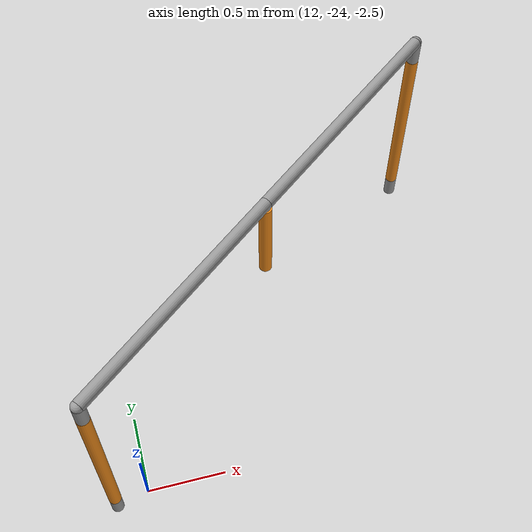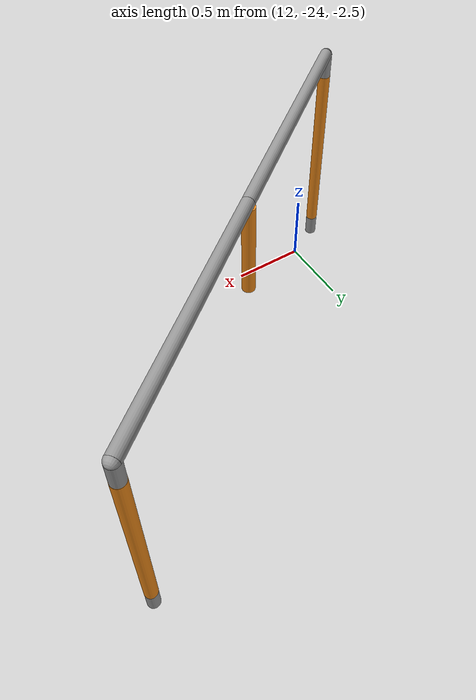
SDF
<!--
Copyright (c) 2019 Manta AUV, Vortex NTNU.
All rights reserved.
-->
<sdf version="1.5">
 <world name="empty_underwater">
  <physics name="default_physics" default="true" type="ode">
   <max_step_size>0.002</max_step_size>
   <real_time_factor>1</real_time_factor>
   <real_time_update_rate>500</real_time_update_rate>
   <ode><solver><type>quick</type><iters>50</iters><sor>0.5</sor></solver></ode>
  </physics>
  <scene>
   <ambient>0.01 0.01 0.01 1.0</ambient>
   <sky><clouds><speed>12</speed></clouds></sky>
   <shadows>1</shadows>
   <fog>
    <color>0.0039 0.26 0.415 1.0</color>
    <type>linear</type>
    <density>0.2</density>
    <start>10</start>
    <end>40</end>
   </fog>
  </scene>
  <spherical_coordinates>
   <latitude_deg>56.71897669633431</latitude_deg>
   <longitude_deg>3.515625</longitude_deg>
  </spherical_coordinates>
  <include><uri>model://sun</uri></include>
  <include><name>gate_side_a</name><pose>12.4 -23.6 -0.9 0 0 -0.9</pose><uri>model://2018/gate</uri></include>
  <light type="directional" name="sun4">
   <pose>8 -19 10 1.75 0 2.9</pose>
   <diffuse>0.8 0.8 0.8 1</diffuse>
   <specular>0.2 0.2 0.2 1</specular>
   <attenuation>
    <range>1000</range>
    <constant>0.9</constant>
    <linear>0.01</linear>
    <quadratic>0.001</quadratic>
   </attenuation>
   <direction>-0.5 0.1 -0.9</direction>
  </light>
  <plugin name="sc_interface" filename="libuuv_sc_ros_interface_plugin.so"/>
 </world>
</sdf>

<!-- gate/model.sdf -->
<sdf version='1.6'>
  <model name='gate'>
    <link name='component_rt'>
      <inertial>
        <mass>10</mass>
        <inertia>
          <ixx>0.145833</ixx>
          <ixy>0</ixy>
          <ixz>0</ixz>
          <iyy>0.145833</iyy>
          <iyz>0</iyz>
          <izz>0.125</izz>
        </inertia>
        <pose>0 0 0 0 -0 0</pose>
      </inertial>
      <pose>0 1.52 -0.000146 1.5707 -0 0</pose>
      <self_collide>0</self_collide>
      <enable_wind>0</enable_wind>
      <kinematic>0</kinematic>
      <gravity>0</gravity>
      <visual name='visual'>
        <pose>0 0 0 0 -0 0</pose>
        <geometry>
          <cylinder>
            <radius>0.0381</radius>
            <length>1.52</length>
          </cylinder>
        </geometry>
        <material>
          <lighting>1</lighting>
          <script>
            <uri>file://media/materials/scripts/gazebo.material</uri>
            <name>Gazebo/Grey</name>
          </script>
          <shader type='pixel'/>
          <emissive>0 0 0 1</emissive>
        </material>
        <transparency>0</transparency>
        <cast_shadows>1</cast_shadows>
      </visual>
      <collision name='collision'>
        <laser_retro>0</laser_retro>
        <max_contacts>10</max_contacts>
        <pose>0 0 0 0 -0 0</pose>
        <geometry>
          <cylinder>
            <radius>0.0381</radius>
            <length>1.52</length>
          </cylinder>
        </geometry>
        <surface>
          <friction>
            <ode>
              <mu>1</mu>
              <mu2>1</mu2>
              <fdir1>0 0 0</fdir1>
              <slip1>0</slip1>
              <slip2>0</slip2>
            </ode>
            <torsional>
              <coefficient>1</coefficient>
              <patch_radius>0</patch_radius>
              <surface_radius>0</surface_radius>
              <use_patch_radius>1</use_patch_radius>
              <ode>
                <slip>0</slip>
              </ode>
            </torsional>
          </friction>
          <bounce>
            <restitution_coefficient>0</restitution_coefficient>
            <threshold>1e+06</threshold>
          </bounce>
          <contact>
            <collide_without_contact>0</collide_without_contact>
            <collide_without_contact_bitmask>1</collide_without_contact_bitmask>
            <collide_bitmask>1</collide_bitmask>
            <ode>
              <soft_cfm>0</soft_cfm>
              <soft_erp>0.2</soft_erp>
              <kp>1e+13</kp>
              <kd>1</kd>
              <max_vel>0.01</max_vel>
              <min_depth>0</min_depth>
            </ode>
            <bullet>
              <split_impulse>1</split_impulse>
              <split_impulse_penetration_threshold>-0.01</split_impulse_penetration_threshold>
              <soft_cfm>0</soft_cfm>
              <soft_erp>0.2</soft_erp>
              <kp>1e+13</kp>
              <kd>1</kd>
            </bullet>
          </contact>
        </surface>
      </collision>
    </link>
    <link name='component_lb'>
      <inertial>
        <mass>10</mass>
        <inertia>
          <ixx>0.145833</ixx>
          <ixy>0</ixy>
          <ixz>0</ixz>
          <iyy>0.145833</iyy>
          <iyz>0</iyz>
          <izz>0.125</izz>
        </inertia>
        <pose>0 0 0 0 -0 0</pose>
      </inertial>
      <pose>-0 -0.760073 -0.759927 0 -0 0</pose>
      <self_collide>0</self_collide>
      <enable_wind>0</enable_wind>
      <kinematic>0</kinematic>
      <gravity>0</gravity>
      <visual name='visual'>
        <pose>0 0 0 0 -0 0</pose>
        <geometry>
          <cylinder>
            <radius>0.0381</radius>
            <length>1.52</length>
          </cylinder>
        </geometry>
        <material>
          <lighting>1</lighting>
          <script>
            <uri>file://media/materials/scripts/gazebo.material</uri>
            <name>Gazebo/Grey</name>
          </script>
          <shader type='pixel'/>
          <emissive>0 0 0 1</emissive>
        </material>
        <transparency>0</transparency>
        <cast_shadows>1</cast_shadows>
      </visual>
      <collision name='collision'>
        <laser_retro>0</laser_retro>
        <max_contacts>10</max_contacts>
        <pose>0 0 0 0 -0 0</pose>
        <geometry>
          <cylinder>
            <radius>0.0381</radius>
            <length>1.52</length>
          </cylinder>
        </geometry>
        <surface>
          <friction>
            <ode>
              <mu>1</mu>
              <mu2>1</mu2>
              <fdir1>0 0 0</fdir1>
              <slip1>0</slip1>
              <slip2>0</slip2>
            </ode>
            <torsional>
              <coefficient>1</coefficient>
              <patch_radius>0</patch_radius>
              <surface_radius>0</surface_radius>
              <use_patch_radius>1</use_patch_radius>
              <ode>
                <slip>0</slip>
              </ode>
            </torsional>
          </friction>
          <bounce>
            <restitution_coefficient>0</restitution_coefficient>
            <threshold>1e+06</threshold>
          </bounce>
          <contact>
            <collide_without_contact>0</collide_without_contact>
            <collide_without_contact_bitmask>1</collide_without_contact_bitmask>
            <collide_bitmask>1</collide_bitmask>
            <ode>
              <soft_cfm>0</soft_cfm>
              <soft_erp>0.2</soft_erp>
              <kp>1e+13</kp>
              <kd>1</kd>
              <max_vel>0.01</max_vel>
              <min_depth>0</min_depth>
            </ode>
            <bullet>
              <split_impulse>1</split_impulse>
              <split_impulse_penetration_threshold>-0.01</split_impulse_penetration_threshold>
              <soft_cfm>0</soft_cfm>
              <soft_erp>0.2</soft_erp>
              <kp>1e+13</kp>
              <kd>1</kd>
            </bullet>
          </contact>
        </surface>
      </collision>
    </link>
    <link name='component_lt'>
      <inertial>
        <mass>10</mass>
        <inertia>
          <ixx>0.145833</ixx>
          <ixy>0</ixy>
          <ixz>0</ixz>
          <iyy>0.145833</iyy>
          <iyz>0</iyz>
          <izz>0.125</izz>
        </inertia>
        <pose>0 0 0 0 -0 0</pose>
      </inertial>
      <pose>0 0 0 1.5707 -0 0</pose>
      <self_collide>0</self_collide>
      <enable_wind>0</enable_wind>
      <kinematic>0</kinematic>
      <gravity>0</gravity>
      <visual name='visual'>
        <pose>0 0 0 0 -0 0</pose>
        <geometry>
          <cylinder>
            <radius>0.0381</radius>
            <length>1.52</length>
          </cylinder>
        </geometry>
        <material>
          <lighting>1</lighting>
          <script>
            <uri>file://media/materials/scripts/gazebo.material</uri>
            <name>Gazebo/Grey</name>
          </script>
          <shader type='pixel'/>
          <emissive>0 0 0 1</emissive>
        </material>
        <transparency>0</transparency>
        <cast_shadows>1</cast_shadows>
      </visual>
      <collision name='collision'>
        <laser_retro>0</laser_retro>
        <max_contacts>10</max_contacts>
        <pose>0 0 0 0 -0 0</pose>
        <geometry>
          <cylinder>
            <radius>0.0381</radius>
            <length>1.52</length>
          </cylinder>
        </geometry>
        <surface>
          <friction>
            <ode>
              <mu>1</mu>
              <mu2>1</mu2>
              <fdir1>0 0 0</fdir1>
              <slip1>0</slip1>
              <slip2>0</slip2>
            </ode>
            <torsional>
              <coefficient>1</coefficient>
              <patch_radius>0</patch_radius>
              <surface_radius>0</surface_radius>
              <use_patch_radius>1</use_patch_radius>
              <ode>
                <slip>0</slip>
              </ode>
            </torsional>
          </friction>
          <bounce>
            <restitution_coefficient>0</restitution_coefficient>
            <threshold>1e+06</threshold>
          </bounce>
          <contact>
            <collide_without_contact>0</collide_without_contact>
            <collide_without_contact_bitmask>1</collide_without_contact_bitmask>
            <collide_bitmask>1</collide_bitmask>
            <ode>
              <soft_cfm>0</soft_cfm>
              <soft_erp>0.2</soft_erp>
              <kp>1e+13</kp>
              <kd>1</kd>
              <max_vel>0.01</max_vel>
              <min_depth>0</min_depth>
            </ode>
            <bullet>
              <split_impulse>1</split_impulse>
              <split_impulse_penetration_threshold>-0.01</split_impulse_penetration_threshold>
              <soft_cfm>0</soft_cfm>
              <soft_erp>0.2</soft_erp>
              <kp>1e+13</kp>
              <kd>1</kd>
            </bullet>
          </contact>
        </surface>
      </collision>
    </link>
    <link name='component_rb'>
      <inertial>
        <mass>10</mass>
        <inertia>
          <ixx>0.145833</ixx>
          <ixy>0</ixy>
          <ixz>0</ixz>
          <iyy>0.145833</iyy>
          <iyz>0</iyz>
          <izz>0.125</izz>
        </inertia>
        <pose>0 0 0 0 -0 0</pose>
      </inertial>
      <pose>0 2.27993 -0.76022 0 -0 0</pose>
      <self_collide>0</self_collide>
      <enable_wind>0</enable_wind>
      <kinematic>0</kinematic>
      <gravity>0</gravity>
      <visual name='visual'>
        <pose>0 0 0 0 -0 0</pose>
        <geometry>
          <cylinder>
            <radius>0.0381</radius>
            <length>1.52</length>
          </cylinder>
        </geometry>
        <material>
          <lighting>1</lighting>
          <script>
            <uri>file://media/materials/scripts/gazebo.material</uri>
            <name>Gazebo/Grey</name>
          </script>
          <shader type='pixel'/>
          <emissive>0 0 0 1</emissive>
        </material>
        <transparency>0</transparency>
        <cast_shadows>1</cast_shadows>
      </visual>
      <collision name='collision'>
        <laser_retro>0</laser_retro>
        <max_contacts>10</max_contacts>
        <pose>0 0 0 0 -0 0</pose>
        <geometry>
          <cylinder>
            <radius>0.0381</radius>
            <length>1.52</length>
          </cylinder>
        </geometry>
        <surface>
          <friction>
            <ode>
              <mu>1</mu>
              <mu2>1</mu2>
              <fdir1>0 0 0</fdir1>
              <slip1>0</slip1>
              <slip2>0</slip2>
            </ode>
            <torsional>
              <coefficient>1</coefficient>
              <patch_radius>0</patch_radius>
              <surface_radius>0</surface_radius>
              <use_patch_radius>1</use_patch_radius>
              <ode>
                <slip>0</slip>
              </ode>
            </torsional>
          </friction>
          <bounce>
            <restitution_coefficient>0</restitution_coefficient>
            <threshold>1e+06</threshold>
          </bounce>
          <contact>
            <collide_without_contact>0</collide_without_contact>
            <collide_without_contact_bitmask>1</collide_without_contact_bitmask>
            <collide_bitmask>1</collide_bitmask>
            <ode>
              <soft_cfm>0</soft_cfm>
              <soft_erp>0.2</soft_erp>
              <kp>1e+13</kp>
              <kd>1</kd>
              <max_vel>0.01</max_vel>
              <min_depth>0</min_depth>
            </ode>
            <bullet>
              <split_impulse>1</split_impulse>
              <split_impulse_penetration_threshold>-0.01</split_impulse_penetration_threshold>
              <soft_cfm>0</soft_cfm>
              <soft_erp>0.2</soft_erp>
              <kp>1e+13</kp>
              <kd>1</kd>
            </bullet>
          </contact>
        </surface>
      </collision>
    </link>
    <link name='corner_l'>
      <inertial>
        <mass>1</mass>
        <inertia>
          <ixx>0.1</ixx>
          <ixy>0</ixy>
          <ixz>0</ixz>
          <iyy>0.1</iyy>
          <iyz>0</iyz>
          <izz>0.1</izz>
        </inertia>
        <pose>0 0 0 0 -0 0</pose>
      </inertial>
      <pose>-0 2.28 -0.000219 1.5707 -0 0</pose>
      <gravity>0</gravity>
      <self_collide>0</self_collide>
      <kinematic>0</kinematic>
      <enable_wind>0</enable_wind>
      <visual name='visual'>
        <pose>0 0 0 0 -0 0</pose>
        <geometry>
          <sphere>
            <radius>0.038</radius>
          </sphere>
        </geometry>
        <material>
          <lighting>1</lighting>
          <script>
            <uri>file://media/materials/scripts/gazebo.material</uri>
            <name>Gazebo/Grey</name>
          </script>
          <shader type='pixel'/>
          <emissive>0 0 0 1</emissive>
        </material>
        <transparency>0</transparency>
        <cast_shadows>1</cast_shadows>
      </visual>
      <collision name='collision'>
        <laser_retro>0</laser_retro>
        <max_contacts>10</max_contacts>
        <pose>0 0 0 0 -0 0</pose>
        <geometry>
          <sphere>
            <radius>0.0381</radius>
          </sphere>
        </geometry>
        <surface>
          <friction>
            <ode>
              <mu>1</mu>
              <mu2>1</mu2>
              <fdir1>0 0 0</fdir1>
              <slip1>0</slip1>
              <slip2>0</slip2>
            </ode>
            <torsional>
              <coefficient>1</coefficient>
              <patch_radius>0</patch_radius>
              <surface_radius>0</surface_radius>
              <use_patch_radius>1</use_patch_radius>
              <ode>
                <slip>0</slip>
              </ode>
            </torsional>
          </friction>
          <bounce>
            <restitution_coefficient>0</restitution_coefficient>
            <threshold>1e+06</threshold>
          </bounce>
          <contact>
            <collide_without_contact>0</collide_without_contact>
            <collide_without_contact_bitmask>1</collide_without_contact_bitmask>
            <collide_bitmask>1</collide_bitmask>
            <ode>
              <soft_cfm>0</soft_cfm>
              <soft_erp>0.2</soft_erp>
              <kp>1e+13</kp>
              <kd>1</kd>
              <max_vel>0.01</max_vel>
              <min_depth>0</min_depth>
            </ode>
            <bullet>
              <split_impulse>1</split_impulse>
              <split_impulse_penetration_threshold>-0.01</split_impulse_penetration_threshold>
              <soft_cfm>0</soft_cfm>
              <soft_erp>0.2</soft_erp>
              <kp>1e+13</kp>
              <kd>1</kd>
            </bullet>
          </contact>
        </surface>
      </collision>
    </link>
    <link name='corner_r'>
      <inertial>
        <mass>1</mass>
        <inertia>
          <ixx>0.1</ixx>
          <ixy>0</ixy>
          <ixz>0</ixz>
          <iyy>0.1</iyy>
          <iyz>0</iyz>
          <izz>0.1</izz>
        </inertia>
        <pose>0 0 0 0 -0 0</pose>
      </inertial>
      <pose>0 -0.76 -0 0 -0 0</pose>
      <gravity>0</gravity>
      <self_collide>0</self_collide>
      <kinematic>0</kinematic>
      <enable_wind>0</enable_wind>
      <visual name='visual'>
        <pose>0 0 0 0 -0 0</pose>
        <geometry>
          <sphere>
            <radius>0.038</radius>
          </sphere>
        </geometry>
        <material>
          <lighting>1</lighting>
          <script>
            <uri>file://media/materials/scripts/gazebo.material</uri>
            <name>Gazebo/Grey</name>
          </script>
          <shader type='pixel'/>
          <emissive>0 0 0 1</emissive>
        </material>
        <transparency>0</transparency>
        <cast_shadows>1</cast_shadows>
      </visual>
      <collision name='collision'>
        <laser_retro>0</laser_retro>
        <max_contacts>10</max_contacts>
        <pose>0 0 0 0 -0 0</pose>
        <geometry>
          <sphere>
            <radius>0.0381</radius>
          </sphere>
        </geometry>
        <surface>
          <friction>
            <ode>
              <mu>1</mu>
              <mu2>1</mu2>
              <fdir1>0 0 0</fdir1>
              <slip1>0</slip1>
              <slip2>0</slip2>
            </ode>
            <torsional>
              <coefficient>1</coefficient>
              <patch_radius>0</patch_radius>
              <surface_radius>0</surface_radius>
              <use_patch_radius>1</use_patch_radius>
              <ode>
                <slip>0</slip>
              </ode>
            </torsional>
          </friction>
          <bounce>
            <restitution_coefficient>0</restitution_coefficient>
            <threshold>1e+06</threshold>
          </bounce>
          <contact>
            <collide_without_contact>0</collide_without_contact>
            <collide_without_contact_bitmask>1</collide_without_contact_bitmask>
            <collide_bitmask>1</collide_bitmask>
            <ode>
              <soft_cfm>0</soft_cfm>
              <soft_erp>0.2</soft_erp>
              <kp>1e+13</kp>
              <kd>1</kd>
              <max_vel>0.01</max_vel>
              <min_depth>0</min_depth>
            </ode>
            <bullet>
              <split_impulse>1</split_impulse>
              <split_impulse_penetration_threshold>-0.01</split_impulse_penetration_threshold>
              <soft_cfm>0</soft_cfm>
              <soft_erp>0.2</soft_erp>
              <kp>1e+13</kp>
              <kd>1</kd>
            </bullet>
          </contact>
        </surface>
      </collision>
    </link>
    <link name='jacket_l'>
      <inertial>
        <mass>10</mass>
        <inertia>
          <ixx>0.145833</ixx>
          <ixy>0</ixy>
          <ixz>0</ixz>
          <iyy>0.145833</iyy>
          <iyz>0</iyz>
          <izz>0.125</izz>
        </inertia>
        <pose>0 0 0 0 -0 0</pose>
      </inertial>
      <pose>-0 -0.760073 -0.759927 0 -0 0</pose>
      <self_collide>0</self_collide>
      <enable_wind>0</enable_wind>
      <kinematic>0</kinematic>
      <gravity>0</gravity>
      <visual name='visual'>
        <pose>0 0 0 0 -0 0</pose>
        <geometry>
          <cylinder>
            <radius>0.039</radius>
            <length>1.219</length>
          </cylinder>
        </geometry>
        <material>
          <lighting>1</lighting>
          <script>
            <uri>file://media/materials/scripts/gazebo.material</uri>
            <name>Gazebo/Orange</name>
          </script>
          <shader type='pixel'/>
          <emissive>0 0 0 1</emissive>
        </material>
        <transparency>0</transparency>
        <cast_shadows>1</cast_shadows>
      </visual>
      <collision name='collision'>
        <laser_retro>0</laser_retro>
        <max_contacts>10</max_contacts>
        <pose>0 0 0 0 -0 0</pose>
        <geometry>
          <cylinder>
            <radius>0</radius>
            <length>0</length>
          </cylinder>
        </geometry>
        <surface>
          <friction>
            <ode>
              <mu>1</mu>
              <mu2>1</mu2>
              <fdir1>0 0 0</fdir1>
              <slip1>0</slip1>
              <slip2>0</slip2>
            </ode>
            <torsional>
              <coefficient>1</coefficient>
              <patch_radius>0</patch_radius>
              <surface_radius>0</surface_radius>
              <use_patch_radius>1</use_patch_radius>
              <ode>
                <slip>0</slip>
              </ode>
            </torsional>
          </friction>
          <bounce>
            <restitution_coefficient>0</restitution_coefficient>
            <threshold>1e+06</threshold>
          </bounce>
          <contact>
            <collide_without_contact>0</collide_without_contact>
            <collide_without_contact_bitmask>1</collide_without_contact_bitmask>
            <collide_bitmask>1</collide_bitmask>
            <ode>
              <soft_cfm>0</soft_cfm>
              <soft_erp>0.2</soft_erp>
              <kp>1e+13</kp>
              <kd>1</kd>
              <max_vel>0.01</max_vel>
              <min_depth>0</min_depth>
            </ode>
            <bullet>
              <split_impulse>1</split_impulse>
              <split_impulse_penetration_threshold>-0.01</split_impulse_penetration_threshold>
              <soft_cfm>0</soft_cfm>
              <soft_erp>0.2</soft_erp>
              <kp>1e+13</kp>
              <kd>1</kd>
            </bullet>
          </contact>
        </surface>
      </collision>
    </link>
    <link name='jacket_r'>
      <inertial>
        <mass>1</mass>
        <inertia>
          <ixx>0.145833</ixx>
          <ixy>0</ixy>
          <ixz>0</ixz>
          <iyy>0.145833</iyy>
          <iyz>0</iyz>
          <izz>0.125</izz>
        </inertia>
        <pose>0 0 0 0 -0 0</pose>
      </inertial>
      <pose>0 2.27993 -0.76022 0 -0 0</pose>
      <self_collide>0</self_collide>
      <enable_wind>0</enable_wind>
      <kinematic>0</kinematic>
      <gravity>0</gravity>
      <visual name='visual'>
        <pose>0 0 0 0 -0 0</pose>
        <geometry>
          <cylinder>
            <radius>0.039</radius>
            <length>1.219</length>
          </cylinder>
        </geometry>
        <material>
          <lighting>1</lighting>
          <script>
            <uri>file://media/materials/scripts/gazebo.material</uri>
            <name>Gazebo/Orange</name>
          </script>
          <shader type='pixel'/>
          <emissive>0 0 0 1</emissive>
        </material>
        <transparency>0</transparency>
        <cast_shadows>1</cast_shadows>
      </visual>
      <collision name='collision'>
        <laser_retro>0</laser_retro>
        <max_contacts>10</max_contacts>
        <pose>0 0 0 0 -0 0</pose>
        <geometry>
          <cylinder>
            <radius>0</radius>
            <length>0</length>
          </cylinder>
        </geometry>
        <surface>
          <friction>
            <ode>
              <mu>1</mu>
              <mu2>1</mu2>
              <fdir1>0 0 0</fdir1>
              <slip1>0</slip1>
              <slip2>0</slip2>
            </ode>
            <torsional>
              <coefficient>1</coefficient>
              <patch_radius>0</patch_radius>
              <surface_radius>0</surface_radius>
              <use_patch_radius>1</use_patch_radius>
              <ode>
                <slip>0</slip>
              </ode>
            </torsional>
          </friction>
          <bounce>
            <restitution_coefficient>0</restitution_coefficient>
            <threshold>1e+06</threshold>
          </bounce>
          <contact>
            <collide_without_contact>0</collide_without_contact>
            <collide_without_contact_bitmask>1</collide_without_contact_bitmask>
            <collide_bitmask>1</collide_bitmask>
            <ode>
              <soft_cfm>0</soft_cfm>
              <soft_erp>0.2</soft_erp>
              <kp>1e+13</kp>
              <kd>1</kd>
              <max_vel>0.01</max_vel>
              <min_depth>0</min_depth>
            </ode>
            <bullet>
              <split_impulse>1</split_impulse>
              <split_impulse_penetration_threshold>-0.01</split_impulse_penetration_threshold>
              <soft_cfm>0</soft_cfm>
              <soft_erp>0.2</soft_erp>
              <kp>1e+13</kp>
              <kd>1</kd>
            </bullet>
          </contact>
        </surface>
      </collision>
    </link>
    <link name='center_link'>
      <inertial>
        <mass>1</mass>
        <inertia>
          <ixx>0.145833</ixx>
          <ixy>0</ixy>
          <ixz>0</ixz>
          <iyy>0.145833</iyy>
          <iyz>0</iyz>
          <izz>0.125</izz>
        </inertia>
        <pose>0 0 0 0 -0 0</pose>
      </inertial>
      <pose>-0 0.75 -0.340029 3.1414 -0 0</pose>
      <gravity>0</gravity>
      <self_collide>0</self_collide>
      <kinematic>0</kinematic>
      <enable_wind>0</enable_wind>
      <visual name='visual'>
        <pose>0 0 0 0 -0 0</pose>
        <geometry>
          <cylinder>
            <radius>0.03</radius>
            <length>0.6096</length>
          </cylinder>
        </geometry>
        <material>
        <material>
          <lighting>1</lighting>
          <script>
            <uri>file://media/materials/scripts/gazebo.material</uri>
            <name>Gazebo/Orange</name>
          </script>
          <shader type='pixel'/>
          <emissive>0 0 0 1</emissive>
        </material>
        </material>
        <transparency>0</transparency>
        <cast_shadows>1</cast_shadows>
      </visual>
      <collision name='collision'>
        <laser_retro>0</laser_retro>
        <max_contacts>10</max_contacts>
        <pose>0 0 0 0 -0 0</pose>
        <geometry>
          <cylinder>
            <radius>0.03</radius>
            <length>0.6096</length>
          </cylinder>
        </geometry>
        <surface>
          <friction>
            <ode>
              <mu>1</mu>
              <mu2>1</mu2>
              <fdir1>0 0 0</fdir1>
              <slip1>0</slip1>
              <slip2>0</slip2>
            </ode>
            <torsional>
              <coefficient>1</coefficient>
              <patch_radius>0</patch_radius>
              <surface_radius>0</surface_radius>
              <use_patch_radius>1</use_patch_radius>
              <ode>
                <slip>0</slip>
              </ode>
            </torsional>
          </friction>
          <bounce>
            <restitution_coefficient>0</restitution_coefficient>
            <threshold>1e+06</threshold>
          </bounce>
          <contact>
            <collide_without_contact>0</collide_without_contact>
            <collide_without_contact_bitmask>1</collide_without_contact_bitmask>
            <collide_bitmask>1</collide_bitmask>
            <ode>
              <soft_cfm>0</soft_cfm>
              <soft_erp>0.2</soft_erp>
              <kp>1e+13</kp>
              <kd>1</kd>
              <max_vel>0.01</max_vel>
              <min_depth>0</min_depth>
            </ode>
            <bullet>
              <split_impulse>1</split_impulse>
              <split_impulse_penetration_threshold>-0.01</split_impulse_penetration_threshold>
              <soft_cfm>0</soft_cfm>
              <soft_erp>0.2</soft_erp>
              <kp>1e+13</kp>
              <kd>1</kd>
            </bullet>
          </contact>
        </surface>
      </collision>
    </link>
    <link name='jacket_c'>
      <inertial>
        <mass>10</mass>
        <inertia>
          <ixx>0.145833</ixx>
          <ixy>0</ixy>
          <ixz>0</ixz>
          <iyy>0.145833</iyy>
          <iyz>0</iyz>
          <izz>0.125</izz>
        </inertia>
        <pose>0 0 0 0 -0 0</pose>
      </inertial>
      <pose>-0 0.75 -0.340029 3.1414 -0 0</pose>
      <self_collide>0</self_collide>
      <enable_wind>0</enable_wind>
      <kinematic>0</kinematic>
      <gravity>0</gravity>
      <visual name='visual'>
        <pose>0 0 0 0 -0 0</pose>
        <geometry>
          <cylinder>
            <radius>0.039</radius>
            <length>0.6096</length>
          </cylinder>
        </geometry>
        <material>
          <lighting>1</lighting>
          <script>
            <uri>file://media/materials/scripts/gazebo.material</uri>
            <name>Gazebo/Orange</name>
          </script>
          <shader type='pixel'/>
          <emissive>0 0 0 1</emissive>
        </material>
        <transparency>0</transparency>
        <cast_shadows>1</cast_shadows>
      </visual>
      <collision name='collision'>
        <laser_retro>0</laser_retro>
        <max_contacts>10</max_contacts>
        <pose>0 0 0 0 -0 0</pose>
        <geometry>
          <cylinder>
            <radius>0</radius>
            <length>0</length>
          </cylinder>
        </geometry>
        <surface>
          <friction>
            <ode>
              <mu>1</mu>
              <mu2>1</mu2>
              <fdir1>0 0 0</fdir1>
              <slip1>0</slip1>
              <slip2>0</slip2>
            </ode>
            <torsional>
              <coefficient>1</coefficient>
              <patch_radius>0</patch_radius>
              <surface_radius>0</surface_radius>
              <use_patch_radius>1</use_patch_radius>
              <ode>
                <slip>0</slip>
              </ode>
            </torsional>
          </friction>
          <bounce>
            <restitution_coefficient>0</restitution_coefficient>
            <threshold>1e+06</threshold>
          </bounce>
          <contact>
            <collide_without_contact>0</collide_without_contact>
            <collide_without_contact_bitmask>1</collide_without_contact_bitmask>
            <collide_bitmask>1</collide_bitmask>
            <ode>
              <soft_cfm>0</soft_cfm>
              <soft_erp>0.2</soft_erp>
              <kp>1e+13</kp>
              <kd>1</kd>
              <max_vel>0.01</max_vel>
              <min_depth>0</min_depth>
            </ode>
            <bullet>
              <split_impulse>1</split_impulse>
              <split_impulse_penetration_threshold>-0.01</split_impulse_penetration_threshold>
              <soft_cfm>0</soft_cfm>
              <soft_erp>0.2</soft_erp>
              <kp>1e+13</kp>
              <kd>1</kd>
            </bullet>
          </contact>
        </surface>
      </collision>
    </link>
    <joint name='center_joint' type='fixed'>
      <parent>component_lt</parent>
      <child>center_link</child>
      <pose>0 0 0 0 -0 0</pose>
      <physics>
        <ode>
          <limit>
            <cfm>0</cfm>
            <erp>0.2</erp>
          </limit>
          <suspension>
            <cfm>0</cfm>
            <erp>0.2</erp>
          </suspension>
        </ode>
      </physics>
    </joint>
    <joint name='component_lt_lb' type='fixed'>
      <parent>component_lt</parent>
      <child>component_lb</child>
      <pose>0 0 0 0 -0 0</pose>
      <physics>
        <ode>
          <limit>
            <cfm>0</cfm>
            <erp>0.2</erp>
          </limit>
          <suspension>
            <cfm>0</cfm>
            <erp>0.2</erp>
          </suspension>
        </ode>
      </physics>
    </joint>
    <joint name='component_lt_rt' type='fixed'>
      <parent>component_lt</parent>
      <child>component_rt</child>
      <pose>0 0 0 0 -0 0</pose>
      <physics>
        <ode>
          <limit>
            <cfm>0</cfm>
            <erp>0.2</erp>
          </limit>
          <suspension>
            <cfm>0</cfm>
            <erp>0.2</erp>
          </suspension>
        </ode>
      </physics>
    </joint>
    <joint name='component_rt_rb' type='fixed'>
      <parent>component_rt</parent>
      <child>component_rb</child>
      <pose>0 0 0 0 -0 0</pose>
      <physics>
        <ode>
          <limit>
            <cfm>0</cfm>
            <erp>0.2</erp>
          </limit>
          <suspension>
            <cfm>0</cfm>
            <erp>0.2</erp>
          </suspension>
        </ode>
      </physics>
    </joint>
    <joint name='corner_joint_l' type='fixed'>
      <parent>component_lt</parent>
      <child>corner_l</child>
      <pose>0 0 0 0 -0 0</pose>
      <physics>
        <ode>
          <limit>
            <cfm>0</cfm>
            <erp>0.2</erp>
          </limit>
          <suspension>
            <cfm>0</cfm>
            <erp>0.2</erp>
          </suspension>
        </ode>
      </physics>
    </joint>
    <joint name='corner_joint_r' type='fixed'>
      <parent>component_rt</parent>
      <child>corner_r</child>
      <pose>0 0 0 0 -0 0</pose>
      <physics>
        <ode>
          <limit>
            <cfm>0</cfm>
            <erp>0.2</erp>
          </limit>
          <suspension>
            <cfm>0</cfm>
            <erp>0.2</erp>
          </suspension>
        </ode>
      </physics>
    </joint>
    <joint name='jacket_joint_l' type='fixed'>
      <parent>component_lb</parent>
      <child>jacket_l</child>
      <pose>0 0 0 0 -0 0</pose>
      <physics>
        <ode>
          <limit>
            <cfm>0</cfm>
            <erp>0.2</erp>
          </limit>
          <suspension>
            <cfm>0</cfm>
            <erp>0.2</erp>
          </suspension>
        </ode>
      </physics>
    </joint>
    <joint name='jacket_joint_r' type='fixed'>
      <parent>component_rb</parent>
      <child>jacket_r</child>
      <pose>0 0 0 0 -0 0</pose>
      <physics>
        <ode>
          <limit>
            <cfm>0</cfm>
            <erp>0.2</erp>
          </limit>
          <suspension>
            <cfm>0</cfm>
            <erp>0.2</erp>
          </suspension>
        </ode>
      </physics>
    </joint>
    <static>1</static>
    <allow_auto_disable>1</allow_auto_disable>
  </model>
</sdf>
